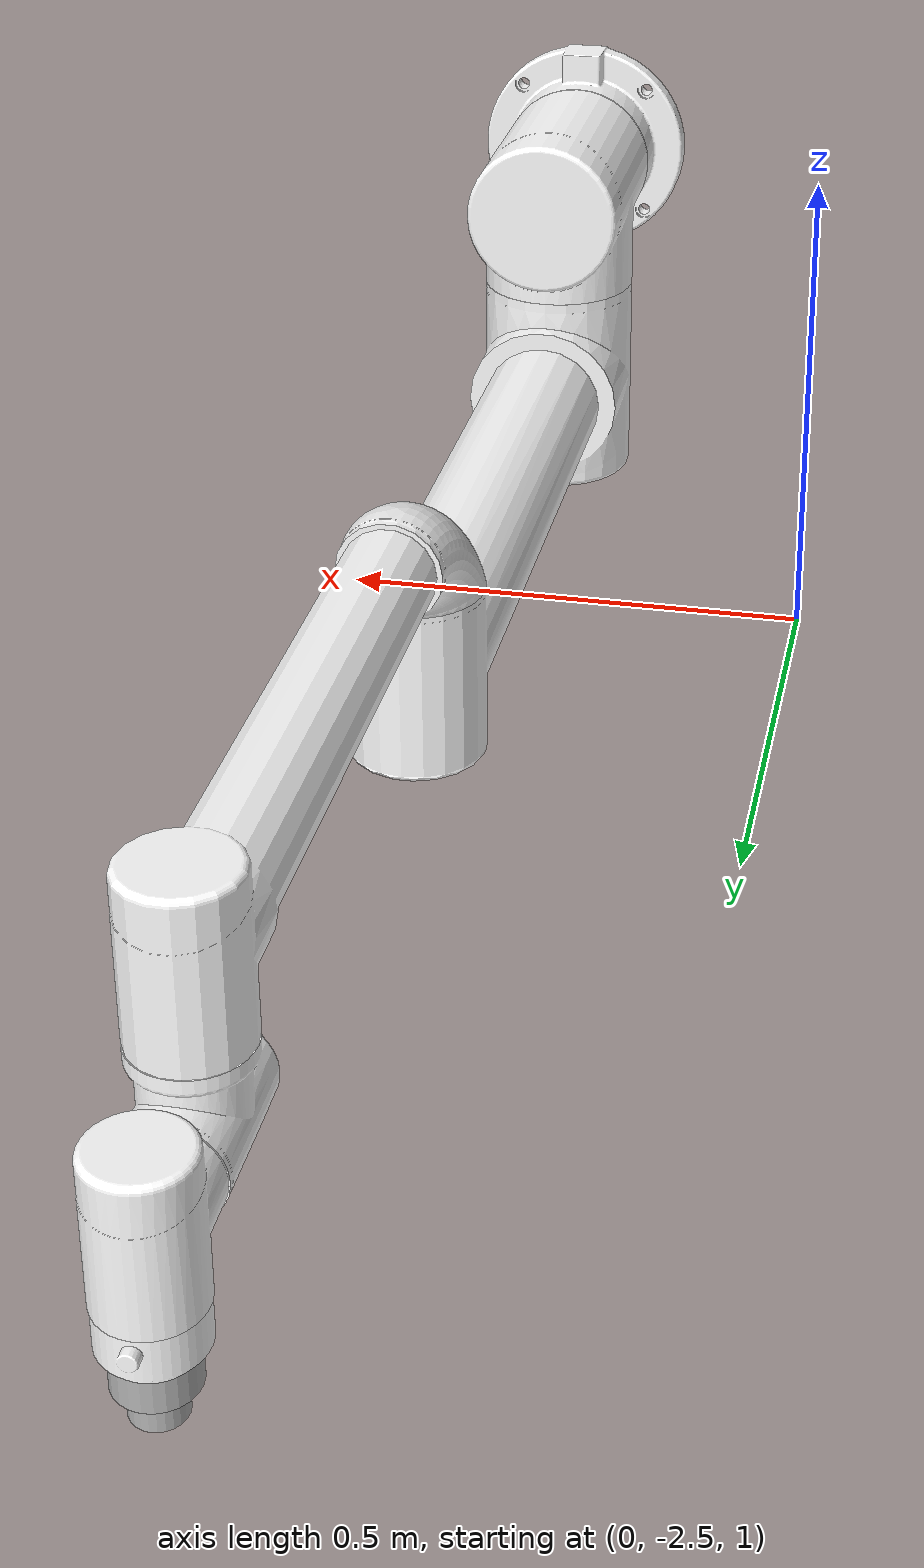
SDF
<?xml version="1.0"?>
<sdf version="1.9">
    <world name="ign_moveit2_follow_target_world">

        <!-- Physics -->
        <plugin filename="ignition-gazebo-physics-system" name="ignition::gazebo::systems::Physics">
            <engine>
                <filename>ignition-physics-dartsim-plugin</filename>
            </engine>
            <dart>
                <collision_detector>bullet</collision_detector>
            </dart>
        </plugin>
        <!-- 定义了物理引擎的参数配置 -->
        <physics name="5ms" type="ignored">
            <max_step_size>0.005</max_step_size>
            <real_time_factor>1.0</real_time_factor>
        </physics>

        <!-- User Commands (transform control) -->
        <plugin filename="ignition-gazebo-user-commands-system" name="ignition::gazebo::systems::UserCommands">
        </plugin>

        <!-- Scene -->
        <plugin filename="ignition-gazebo-scene-broadcaster-system" name="ignition::gazebo::systems::SceneBroadcaster">
        </plugin>
        <scene>
            <ambient>0.7 0.7 0.7</ambient>
            <background>0.7 0.7 0.7</background>
            <shadows>false</shadows>
        </scene>

        <!-- 光照 -->
        <light type="directional" name="sun">
            <cast_shadows>true</cast_shadows>
            <pose>0 0 10 0 0 0</pose>
            <diffuse>0.8 0.8 0.8 1</diffuse>
            <specular>0.2 0.2 0.2 1</specular>
            <direction>0.0 -0.7 -0.3</direction>
        </light>

        <!-- Models -->
        <!-- Ground -->
        <model name="ground_plane">
            <pose>0 0 0 0 0 0</pose>
            <static>true</static>
            <link name="ground_plane_link">
                <collision name="ground_plane_collision">
                    <geometry>
                        <plane>
                            <normal>0 0 1</normal>
                        </plane>
                    </geometry>
                </collision>
            </link>
        </model>

        <include>
            <uri>
        file://install/share/calibration/aruco_default/model.sdf
            </uri>
            <pose>0.257 -2.6 1.5 1.57 0 -3.14</pose>
        </include>

        <!-- Static target -->

    </world>
</sdf>

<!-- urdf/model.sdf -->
<sdf version='1.9'>
  <model name='aubo_i10'>
    <joint name='world_joint' type='fixed'>
      <pose relative_to='__model__'>0 0 0 0 0 0</pose>
      <parent>world</parent>
      <child>base_link</child>
    </joint>
    <link name='base_link'>
      <pose relative_to='world_joint'>0 0 0 0 0 0</pose>
      <inertial>
        <pose>0.000136 0.001601 0.018986 0 0 0</pose>
        <mass>2.5920000000000001</mass>
        <inertia>
          <ixx>0.0085240000000000003</ixx>
          <ixy>-9.9999999999999995e-07</ixy>
          <ixz>-5.0000000000000004e-06</ixz>
          <iyy>0.0079340000000000001</iyy>
          <iyz>-8.1000000000000004e-05</iyz>
          <izz>0.015304</izz>
        </inertia>
      </inertial>
      <collision name='base_link_collision'>
        <pose>0 0 0 0 0 0</pose>
        <geometry>
          <mesh>
            <scale>1 1 1</scale>
            <uri>file:///home/xvshuo/work/scl/auborobot/install/share/aubo_description/meshes/aubo_i10/collision/link0.STL</uri>
          </mesh>
        </geometry>
      </collision>
      <visual name='base_link_visual'>
        <pose>0 0 0 0 0 0</pose>
        <geometry>
          <mesh>
            <scale>1 1 1</scale>
            <uri>file:///home/xvshuo/work/scl/auborobot/install/share/aubo_description/meshes/aubo_i10/visual/link0.DAE</uri>
          </mesh>
        </geometry>
        <material>
          <diffuse>1 1 1 1</diffuse>
          <ambient>1 1 1 1</ambient>
        </material>
      </visual>
    </link>
    <joint name='shoulder_joint' type='revolute'>
      <pose relative_to='base_link'>0 0 0.1632 0 0 3.141592653589793</pose>
      <parent>base_link</parent>
      <child>shoulder_Link</child>
      <axis>
        <xyz>0 0 1</xyz>
        <limit>
          <lower>-6.2831853071795862</lower>
          <upper>6.2831853071795862</upper>
          <effort>267</effort>
          <velocity>3.1415999999999999</velocity>
        </limit>
        <dynamics>
          <spring_reference>0</spring_reference>
          <spring_stiffness>0</spring_stiffness>
        </dynamics>
      </axis>
    </joint>
    <link name='shoulder_Link'>
      <pose relative_to='shoulder_joint'>0 0 0 0 0 0</pose>
      <inertial>
        <pose>-4e-06 0.005112 -0.026275 0 0 0</pose>
        <mass>10.180139</mass>
        <inertia>
          <ixx>0.043326000000000003</ixx>
          <ixy>3.0000000000000001e-06</ixy>
          <ixz>3.0000000000000001e-06</ixz>
          <iyy>0.042233</iyy>
          <iyz>-0.0017669999999999999</iyz>
          <izz>0.029902000000000001</izz>
        </inertia>
      </inertial>
      <collision name='shoulder_Link_collision'>
        <pose>0 0 0 0 0 0</pose>
        <geometry>
          <mesh>
            <scale>1 1 1</scale>
            <uri>file:///home/xvshuo/work/scl/auborobot/install/share/aubo_description/meshes/aubo_i10/collision/link1.STL</uri>
          </mesh>
        </geometry>
      </collision>
      <visual name='shoulder_Link_visual'>
        <pose>0 0 0 0 0 0</pose>
        <geometry>
          <mesh>
            <scale>1 1 1</scale>
            <uri>file:///home/xvshuo/work/scl/auborobot/install/share/aubo_description/meshes/aubo_i10/visual/link1.DAE</uri>
          </mesh>
        </geometry>
        <material>
          <diffuse>1 1 1 1</diffuse>
          <ambient>1 1 1 1</ambient>
        </material>
      </visual>
    </link>
    <joint name='upperArm_joint' type='revolute'>
      <pose relative_to='shoulder_Link'>0 0.2013 0 -1.570796326794896 -1.570796326794897 0</pose>
      <parent>shoulder_Link</parent>
      <child>upperArm_Link</child>
      <axis>
        <xyz>0 0 1</xyz>
        <limit>
          <lower>-6.2831853071795862</lower>
          <upper>6.2831853071795862</upper>
          <effort>267</effort>
          <velocity>3.1415999999999999</velocity>
        </limit>
        <dynamics>
          <spring_reference>0</spring_reference>
          <spring_stiffness>0</spring_stiffness>
        </dynamics>
      </axis>
    </joint>
    <link name='upperArm_Link'>
      <pose relative_to='upperArm_joint'>0 0 0 0 0 0</pose>
      <inertial>
        <pose>0.231117 -1.3e-05 -0.022852 0 0 0</pose>
        <mass>18.096361000000002</mass>
        <inertia>
          <ixx>0.064904000000000003</ixx>
          <ixy>3.0000000000000001e-05</ixy>
          <ixz>-0.033710999999999998</ixz>
          <iyy>1.5246230000000001</iyy>
          <iyz>1.5e-05</iyz>
          <izz>1.5056639999999999</izz>
        </inertia>
      </inertial>
      <collision name='upperArm_Link_collision'>
        <pose>0 0 0 0 0 0</pose>
        <geometry>
          <mesh>
            <scale>1 1 1</scale>
            <uri>file:///home/xvshuo/work/scl/auborobot/install/share/aubo_description/meshes/aubo_i10/collision/link2.STL</uri>
          </mesh>
        </geometry>
      </collision>
      <visual name='upperArm_Link_visual'>
        <pose>0 0 0 0 0 0</pose>
        <geometry>
          <mesh>
            <scale>1 1 1</scale>
            <uri>file:///home/xvshuo/work/scl/auborobot/install/share/aubo_description/meshes/aubo_i10/visual/link2.DAE</uri>
          </mesh>
        </geometry>
        <material>
          <diffuse>1 1 1 1</diffuse>
          <ambient>1 1 1 1</ambient>
        </material>
      </visual>
    </link>
    <joint name='foreArm_joint' type='revolute'>
      <pose relative_to='upperArm_Link'>0.647 0 0 -3.141592653589793 0 0</pose>
      <parent>upperArm_Link</parent>
      <child>foreArm_Link</child>
      <axis>
        <xyz>0 0 1</xyz>
        <limit>
          <lower>-6.2831853071795862</lower>
          <upper>6.2831853071795862</upper>
          <effort>133</effort>
          <velocity>2.5655999999999999</velocity>
        </limit>
        <dynamics>
          <spring_reference>0</spring_reference>
          <spring_stiffness>0</spring_stiffness>
        </dynamics>
      </axis>
    </joint>
    <link name='foreArm_Link'>
      <pose relative_to='foreArm_joint'>0 0 0 0 0 0</pose>
      <inertial>
        <pose>0.41956 -1.9e-05 0.118053 0 0 0</pose>
        <mass>4.4480919999999999</mass>
        <inertia>
          <ixx>0.0067990000000000004</ixx>
          <ixy>1.5999999999999999e-05</ixy>
          <ixz>0.0040039999999999997</ixz>
          <iyy>0.246194</iyy>
          <iyz>5.0000000000000004e-06</iyz>
          <izz>0.24479000000000001</izz>
        </inertia>
      </inertial>
      <collision name='foreArm_Link_collision'>
        <pose>0 0 0 0 0 0</pose>
        <geometry>
          <mesh>
            <scale>1 1 1</scale>
            <uri>file:///home/xvshuo/work/scl/auborobot/install/share/aubo_description/meshes/aubo_i10/collision/link3.STL</uri>
          </mesh>
        </geometry>
      </collision>
      <visual name='foreArm_Link_visual'>
        <pose>0 0 0 0 0 0</pose>
        <geometry>
          <mesh>
            <scale>1 1 1</scale>
            <uri>file:///home/xvshuo/work/scl/auborobot/install/share/aubo_description/meshes/aubo_i10/visual/link3.DAE</uri>
          </mesh>
        </geometry>
        <material>
          <diffuse>1 1 1 1</diffuse>
          <ambient>1 1 1 1</ambient>
        </material>
      </visual>
    </link>
    <joint name='wrist1_joint' type='revolute'>
      <pose relative_to='foreArm_Link'>0.6005 0 0 3.141592653589793 0 1.570796326794896</pose>
      <parent>foreArm_Link</parent>
      <child>wrist1_Link</child>
      <axis>
        <xyz>0 0 1</xyz>
        <limit>
          <lower>-6.2831853071795862</lower>
          <upper>6.2831853071795862</upper>
          <effort>49</effort>
          <velocity>3.1415999999999999</velocity>
        </limit>
        <dynamics>
          <spring_reference>0</spring_reference>
          <spring_stiffness>0</spring_stiffness>
        </dynamics>
      </axis>
    </joint>
    <link name='wrist1_Link'>
      <pose relative_to='wrist1_joint'>0 0 0 0 0 0</pose>
      <inertial>
        <pose>4.7e-05 0.009773 -0.005726 0 0 0</pose>
        <mass>1.79166</mass>
        <inertia>
          <ixx>0.002457</ixx>
          <ixy>3.9999999999999998e-06</ixy>
          <ixz>9.9999999999999995e-07</ixz>
          <iyy>0.0015900000000000001</iyy>
          <iyz>-0.00012300000000000001</iyz>
          <izz>0.002183</izz>
        </inertia>
      </inertial>
      <collision name='wrist1_Link_collision'>
        <pose>0 0 0 0 0 0</pose>
        <geometry>
          <mesh>
            <scale>1 1 1</scale>
            <uri>file:///home/xvshuo/work/scl/auborobot/install/share/aubo_description/meshes/aubo_i10/collision/link4.STL</uri>
          </mesh>
        </geometry>
      </collision>
      <visual name='wrist1_Link_visual'>
        <pose>0 0 0 0 0 0</pose>
        <geometry>
          <mesh>
            <scale>1 1 1</scale>
            <uri>file:///home/xvshuo/work/scl/auborobot/install/share/aubo_description/meshes/aubo_i10/visual/link4.DAE</uri>
          </mesh>
        </geometry>
        <material>
          <diffuse>1 1 1 1</diffuse>
          <ambient>1 1 1 1</ambient>
        </material>
      </visual>
    </link>
    <joint name='wrist2_joint' type='revolute'>
      <pose relative_to='wrist1_Link'>0 0.1025 0 -1.570796326794896 0 0</pose>
      <parent>wrist1_Link</parent>
      <child>wrist2_Link</child>
      <axis>
        <xyz>0 0 1</xyz>
        <limit>
          <lower>-6.2831853071795862</lower>
          <upper>6.2831853071795862</upper>
          <effort>13.5</effort>
          <velocity>3.1415999999999999</velocity>
        </limit>
        <dynamics>
          <spring_reference>0</spring_reference>
          <spring_stiffness>0</spring_stiffness>
        </dynamics>
      </axis>
    </joint>
    <link name='wrist2_Link'>
      <pose relative_to='wrist2_joint'>0 0 0 0 0 0</pose>
      <inertial>
        <pose>-3.8e-05 -0.011278 -0.001539 0 0 0</pose>
        <mass>1.6280220000000001</mass>
        <inertia>
          <ixx>0.001951</ixx>
          <ixy>3.0000000000000001e-06</ixy>
          <ixz>-9.9999999999999995e-07</ixz>
          <iyy>0.0011540000000000001</iyy>
          <iyz>4.1999999999999998e-05</iyz>
          <izz>0.001931</izz>
        </inertia>
      </inertial>
      <collision name='wrist2_Link_collision'>
        <pose>0 0 0 0 0 0</pose>
        <geometry>
          <mesh>
            <scale>1 1 1</scale>
            <uri>file:///home/xvshuo/work/scl/auborobot/install/share/aubo_description/meshes/aubo_i10/collision/link5.STL</uri>
          </mesh>
        </geometry>
      </collision>
      <visual name='wrist2_Link_visual'>
        <pose>0 0 0 0 0 0</pose>
        <geometry>
          <mesh>
            <scale>1 1 1</scale>
            <uri>file:///home/xvshuo/work/scl/auborobot/install/share/aubo_description/meshes/aubo_i10/visual/link5.DAE</uri>
          </mesh>
        </geometry>
        <material>
          <diffuse>1 1 1 1</diffuse>
          <ambient>1 1 1 1</ambient>
        </material>
      </visual>
    </link>
    <joint name='wrist3_joint' type='revolute'>
      <pose relative_to='wrist2_Link'>0 -0.094 0 1.570796326794896 0 0</pose>
      <parent>wrist2_Link</parent>
      <child>wrist3_Link</child>
      <axis>
        <xyz>0 0 1</xyz>
        <limit>
          <lower>-6.2831853071795862</lower>
          <upper>6.2831853071795862</upper>
          <effort>13.5</effort>
          <velocity>3.1415999999999999</velocity>
        </limit>
        <dynamics>
          <spring_reference>0</spring_reference>
          <spring_stiffness>0</spring_stiffness>
        </dynamics>
      </axis>
    </joint>
    <link name='wrist3_Link'>
      <pose relative_to='wrist3_joint'>0 0 0 0 0 0</pose>
      <inertial>
        <pose>2.2e-05 0.0005999999999999999 -0.017081 0 0 0</pose>
        <mass>0.1978</mass>
        <inertia>
          <ixx>0.000118</ixx>
          <ixy>0</ixy>
          <ixz>0</ixz>
          <iyy>0.000112</iyy>
          <iyz>9.9999999999999995e-07</iyz>
          <izz>0.000184</izz>
        </inertia>
      </inertial>
      <collision name='wrist3_Link_collision'>
        <pose>0 0 0 0 0 0</pose>
        <geometry>
          <mesh>
            <scale>1 1 1</scale>
            <uri>file:///home/xvshuo/work/scl/auborobot/install/share/aubo_description/meshes/aubo_i10/collision/link6.STL</uri>
          </mesh>
        </geometry>
      </collision>
      <visual name='wrist3_Link_visual'>
        <pose>0 0 0 0 0 0</pose>
        <geometry>
          <mesh>
            <scale>1 1 1</scale>
            <uri>file:///home/xvshuo/work/scl/auborobot/install/share/aubo_description/meshes/aubo_i10/visual/link6.DAE</uri>
          </mesh>
        </geometry>
        <material>
          <diffuse>1 1 1 1</diffuse>
          <ambient>1 1 1 1</ambient>
        </material>
      </visual>
    </link>

    <!-- 相机链接 -->
    <link name='camera_link'>
      <pose relative_to='wrist3_Link'>0 0 0.01 0 0 0</pose>      <!-- 相机位置和方向相对于 wrist3_Link -->
      <inertial>
        <mass>0.1</mass>
        <inertia>
          <ixx>0.0001</ixx>
          <iyy>0.0001</iyy>
          <izz>0.0001</izz>
        </inertia>
      </inertial>
      <collision name='camera_collision'>
        <geometry>
          <cylinder>
            <radius>0.03</radius>            <!-- 底部的半径 -->
            <length>0.05</length>            <!-- 圆柱的高度 -->
          </cylinder>
        </geometry>
      </collision>
      <visual name='camera_visual_base'>
        <pose>0 0 0 0 0 0</pose>
        <geometry>
          <cylinder>
            <radius>0.03</radius>            <!-- 底部的半径 -->
            <length>0.03</length>            <!-- 底部圆柱的高度 -->
          </cylinder>
        </geometry>
        <material>
          <diffuse>0.7 0.7 0.7 1</diffuse>
        </material>
      </visual>
      <visual name='camera_visual_top'>
        <pose>0 0 0.03 0 0 0</pose>        <!-- 顶部部分的相对位置 -->
        <geometry>
          <cylinder>
            <radius>0.02</radius>            <!-- 顶部的半径 -->
            <length>0.02</length>            <!-- 顶部圆柱的高度 -->
          </cylinder>
        </geometry>
        <material>
          <diffuse>0.7 0.7 0.7 1</diffuse>
        </material>
      </visual>
      <sensor name='camera' type='camera'>
        <pose>0 0 0.05 -1.57080 -1.5708 0</pose>        <!-- 相机的光学中心位置 -->
        <camera>
          <horizontal_fov>1.047</horizontal_fov>
          <image>
            <width>800</width>
            <height>600</height>
          </image>
          <clip>
            <near>0.1</near>
            <far>100</far>
          </clip>
        </camera>
        <always_on>1</always_on>
        <update_rate>15</update_rate>
        <visualize>true</visualize>
        <topic>/camera</topic>
      </sensor>
    </link>

    <!-- 将相机链接固定在机器人末端执行器上 -->
    <joint name='camera_joint' type='fixed'>
      <parent>wrist3_Link</parent>
      <child>camera_link</child>
      <pose>0 0 0 0 0 0</pose>
    </joint>

    <!-- 相机插件 -->
    <plugin filename="ignition-gazebo-sensors-system" name="gz::sim::systems::Sensors">
      <render_engine>ogre</render_engine>
    </plugin>

    <plugin name='ign_ros2_control::IgnitionROS2ControlPlugin' filename='ign_ros2_control-system'>
      <parameters>/home/xvshuo/work/scl/gazebo_moviet2/src/aubo_moveit_config/config/ros2_controllers.yaml</parameters>
    </plugin>
  </model>
</sdf>
